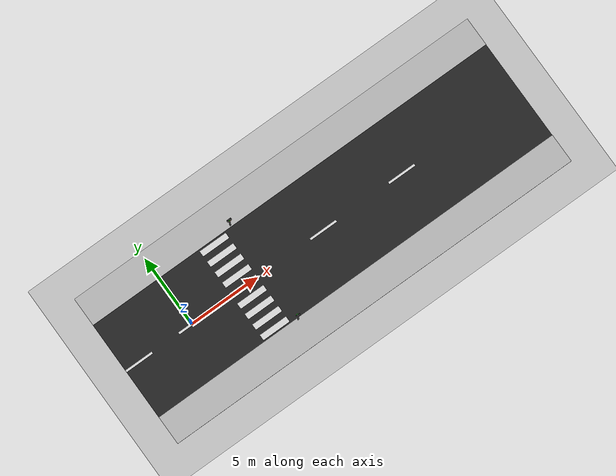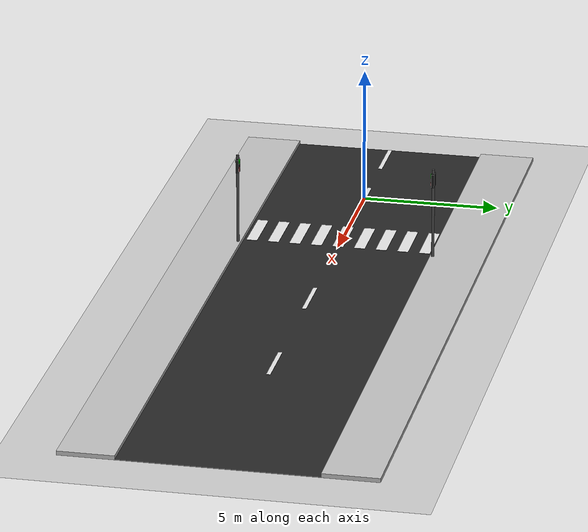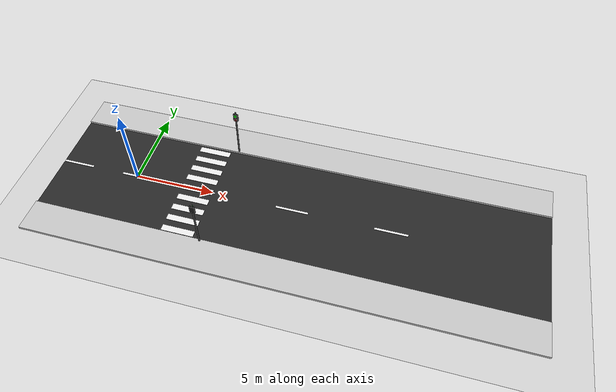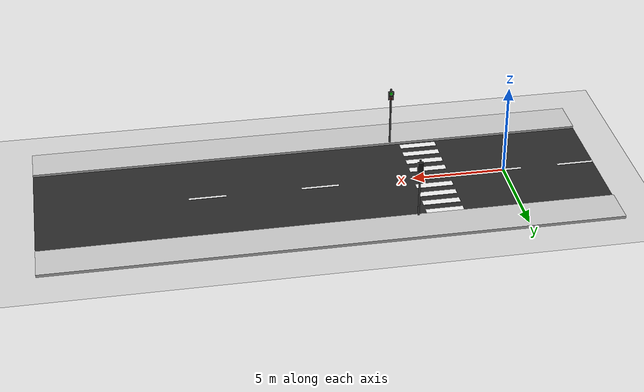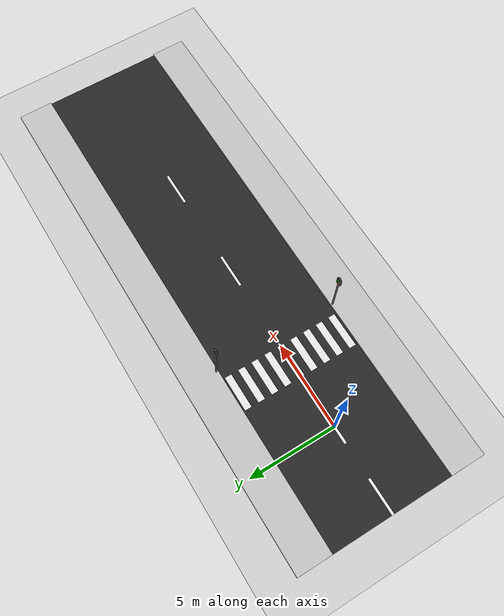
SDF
<sdf version="1.9">
 <world name="people">
  <physics type="ode">
   <max_step_size>0.01</max_step_size>
   <real_time_factor>1.0</real_time_factor>
   <real_time_update_rate>100</real_time_update_rate>
  </physics>
  <gravity>0 0 -9.8</gravity>
  <magnetic_field>6e-06 2.3e-05 -4.2e-05</magnetic_field>
  <atmosphere type="adiabatic"/>
  <scene>
   <grid>false</grid>
   <ambient>0.4 0.4 0.4 1</ambient>
   <background>0.7 0.7 0.7 1</background>
   <shadows>false</shadows>
  </scene>
  <model name="ground_plane">
   <static>true</static>
   <link name="link">
    <collision name="collision">
     <geometry><plane><normal>0 0 1</normal><size>1 1</size></plane></geometry>
    </collision>
    <visual name="visual">
     <geometry><plane><normal>0 0 1</normal><size>500 500</size></plane></geometry>
     <material>
      <ambient>0.8 0.8 0.8 1</ambient>
      <diffuse>0.8 0.8 0.8 1</diffuse>
      <specular>0.8 0.8 0.8 1</specular>
     </material>
    </visual>
    <inertial>
     <mass>1</mass>
     <inertia><ixx>1</ixx><ixy>0</ixy><ixz>0</ixz><iyy>1</iyy><iyz>0</iyz><izz>1</izz></inertia>
    </inertial>
   </link>
  </model>
  <light name="sunUTC" type="directional">
   <pose>0 0 500 0 -0 0</pose>
   <intensity>1</intensity>
   <direction>0.001 0.625 -0.78</direction>
   <diffuse>0.904 0.904 0.904 1</diffuse>
   <specular>0.271 0.271 0.271 1</specular>
   <attenuation><range>2000</range><linear>0</linear><constant>1</constant><quadratic>0</quadratic></attenuation>
   <spot><inner_angle>0</inner_angle><outer_angle>0</outer_angle><falloff>0</falloff></spot>
  </light>
  <model name="street">
   <static>true</static>
   <link name="link">
    <visual name="road_surface">
     <pose>10 0 0.01 0 0 0</pose>
     <geometry><box><size>30 7 0.02</size></box></geometry>
     <material>
      <ambient>0.15 0.15 0.15 1</ambient>
      <diffuse>0.15 0.15 0.15 1</diffuse>
      <specular>0.1 0.1 0.1 1</specular>
     </material>
    </visual>
    <visual name="stripe_1">
     <pose>-4 0 0.025 0 0 0</pose>
     <geometry><box><size>2 0.15 0.01</size></box></geometry>
     <material><ambient>0.9 0.9 0.9 1</ambient><diffuse>0.9 0.9 0.9 1</diffuse></material>
    </visual>
    <visual name="stripe_2">
     <pose>0 0 0.025 0 0 0</pose>
     <geometry><box><size>2 0.15 0.01</size></box></geometry>
     <material><ambient>0.9 0.9 0.9 1</ambient><diffuse>0.9 0.9 0.9 1</diffuse></material>
    </visual>
    <visual name="crosswalk_1">
     <pose>4 -3.2 0.025 0 0 0</pose>
     <geometry><box><size>2 0.4 0.01</size></box></geometry>
     <material><ambient>0.9 0.9 0.9 1</ambient><diffuse>0.9 0.9 0.9 1</diffuse></material>
    </visual>
    <visual name="crosswalk_2">
     <pose>4 -2.4 0.025 0 0 0</pose>
     <geometry><box><size>2 0.4 0.01</size></box></geometry>
     <material><ambient>0.9 0.9 0.9 1</ambient><diffuse>0.9 0.9 0.9 1</diffuse></material>
    </visual>
    <visual name="crosswalk_3">
     <pose>4 -1.6 0.025 0 0 0</pose>
     <geometry><box><size>2 0.4 0.01</size></box></geometry>
     <material><ambient>0.9 0.9 0.9 1</ambient><diffuse>0.9 0.9 0.9 1</diffuse></material>
    </visual>
    <visual name="crosswalk_4">
     <pose>4 -0.8 0.025 0 0 0</pose>
     <geometry><box><size>2 0.4 0.01</size></box></geometry>
     <material><ambient>0.9 0.9 0.9 1</ambient><diffuse>0.9 0.9 0.9 1</diffuse></material>
    </visual>
    <visual name="crosswalk_5">
     <pose>4 0 0.025 0 0 0</pose>
     <geometry><box><size>2 0.4 0.01</size></box></geometry>
     <material><ambient>0.9 0.9 0.9 1</ambient><diffuse>0.9 0.9 0.9 1</diffuse></material>
    </visual>
    <visual name="crosswalk_6">
     <pose>4 0.8 0.025 0 0 0</pose>
     <geometry><box><size>2 0.4 0.01</size></box></geometry>
     <material><ambient>0.9 0.9 0.9 1</ambient><diffuse>0.9 0.9 0.9 1</diffuse></material>
    </visual>
    <visual name="crosswalk_7">
     <pose>4 1.6 0.025 0 0 0</pose>
     <geometry><box><size>2 0.4 0.01</size></box></geometry>
     <material><ambient>0.9 0.9 0.9 1</ambient><diffuse>0.9 0.9 0.9 1</diffuse></material>
    </visual>
    <visual name="crosswalk_8">
     <pose>4 2.4 0.025 0 0 0</pose>
     <geometry><box><size>2 0.4 0.01</size></box></geometry>
     <material><ambient>0.9 0.9 0.9 1</ambient><diffuse>0.9 0.9 0.9 1</diffuse></material>
    </visual>
    <visual name="crosswalk_9">
     <pose>4 3.2 0.025 0 0 0</pose>
     <geometry><box><size>2 0.4 0.01</size></box></geometry>
     <material><ambient>0.9 0.9 0.9 1</ambient><diffuse>0.9 0.9 0.9 1</diffuse></material>
    </visual>
    <visual name="stripe_3">
     <pose>10 0 0.025 0 0 0</pose>
     <geometry><box><size>2 0.15 0.01</size></box></geometry>
     <material><ambient>0.9 0.9 0.9 1</ambient><diffuse>0.9 0.9 0.9 1</diffuse></material>
    </visual>
    <visual name="stripe_4">
     <pose>16 0 0.025 0 0 0</pose>
     <geometry><box><size>2 0.15 0.01</size></box></geometry>
     <material><ambient>0.9 0.9 0.9 1</ambient><diffuse>0.9 0.9 0.9 1</diffuse></material>
    </visual>
    <visual name="sidewalk_left">
     <pose>10 4.5 0.075 0 0 0</pose>
     <geometry><box><size>30 2 0.15</size></box></geometry>
     <material><ambient>0.75 0.75 0.75 1</ambient><diffuse>0.75 0.75 0.75 1</diffuse></material>
    </visual>
    <visual name="sidewalk_right">
     <pose>10 -4.5 0.075 0 0 0</pose>
     <geometry><box><size>30 2 0.15</size></box></geometry>
     <material><ambient>0.75 0.75 0.75 1</ambient><diffuse>0.75 0.75 0.75 1</diffuse></material>
    </visual>
   </link>
  </model>
  <model name="pedestrian_signal_south">
   <static>true</static>
   <pose>5.5 -3.6 0 0 0 -1.5708</pose>
   <link name="link">
    <visual name="pole">
     <pose>0 0 1.75 0 0 0</pose>
     <geometry><cylinder><radius>0.05</radius><length>3.5</length></cylinder></geometry>
     <material><ambient>0.3 0.3 0.3 1</ambient><diffuse>0.3 0.3 0.3 1</diffuse></material>
    </visual>
    <collision name="pole_collision">
     <pose>0 0 1.75 0 0 0</pose>
     <geometry><cylinder><radius>0.05</radius><length>3.5</length></cylinder></geometry>
    </collision>
    <visual name="head">
     <pose>0 0 3.1 0 0 0</pose>
     <geometry><box><size>0.1 0.3 0.5</size></box></geometry>
     <material><ambient>0.1 0.1 0.1 1</ambient><diffuse>0.1 0.1 0.1 1</diffuse></material>
    </visual>
    <visual name="walk_light">
     <pose>-0.06 0 3.25 0 1.5708 0</pose>
     <geometry><cylinder><radius>0.09</radius><length>0.04</length></cylinder></geometry>
     <material>
      <ambient>0.0 0.85 0.0 1</ambient>
      <diffuse>0.0 0.85 0.0 1</diffuse>
      <emissive>0.0 0.7 0.0 1</emissive>
     </material>
    </visual>
    <visual name="dont_walk_light">
     <pose>-0.06 0 2.95 0 1.5708 0</pose>
     <geometry><cylinder><radius>0.09</radius><length>0.04</length></cylinder></geometry>
     <material><ambient>0.25 0.0 0.0 1</ambient><diffuse>0.25 0.0 0.0 1</diffuse></material>
    </visual>
   </link>
  </model>
  <model name="pedestrian_signal_north">
   <static>true</static>
   <pose>5.5 3.6 0 0 0 1.5708</pose>
   <link name="link">
    <visual name="pole">
     <pose>0 0 1.75 0 0 0</pose>
     <geometry><cylinder><radius>0.05</radius><length>3.5</length></cylinder></geometry>
     <material><ambient>0.3 0.3 0.3 1</ambient><diffuse>0.3 0.3 0.3 1</diffuse></material>
    </visual>
    <collision name="pole_collision">
     <pose>0 0 1.75 0 0 0</pose>
     <geometry><cylinder><radius>0.05</radius><length>3.5</length></cylinder></geometry>
    </collision>
    <visual name="head">
     <pose>0 0 3.1 0 0 0</pose>
     <geometry><box><size>0.1 0.3 0.5</size></box></geometry>
     <material><ambient>0.1 0.1 0.1 1</ambient><diffuse>0.1 0.1 0.1 1</diffuse></material>
    </visual>
    <visual name="walk_light">
     <pose>-0.06 0 3.25 0 1.5708 0</pose>
     <geometry><cylinder><radius>0.09</radius><length>0.04</length></cylinder></geometry>
     <material>
      <ambient>0.0 0.85 0.0 1</ambient>
      <diffuse>0.0 0.85 0.0 1</diffuse>
      <emissive>0.0 0.7 0.0 1</emissive>
     </material>
    </visual>
    <visual name="dont_walk_light">
     <pose>-0.06 0 2.95 0 1.5708 0</pose>
     <geometry><cylinder><radius>0.09</radius><length>0.04</length></cylinder></geometry>
     <material><ambient>0.25 0.0 0.0 1</ambient><diffuse>0.25 0.0 0.0 1</diffuse></material>
    </visual>
   </link>
  </model>
  <spherical_coordinates>
   <surface_model>EARTH_WGS84</surface_model>
   <world_frame_orientation>ENU</world_frame_orientation>
   <latitude_deg>47.397971057728974</latitude_deg>
   <longitude_deg>8.546163739800146</longitude_deg>
   <elevation>0</elevation>
  </spherical_coordinates>
 </world>
</sdf>
